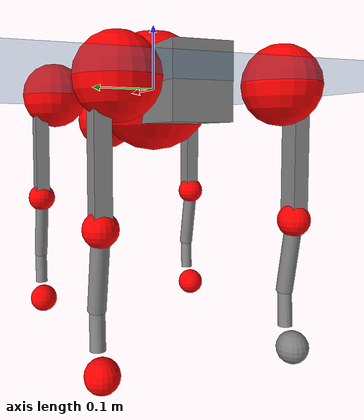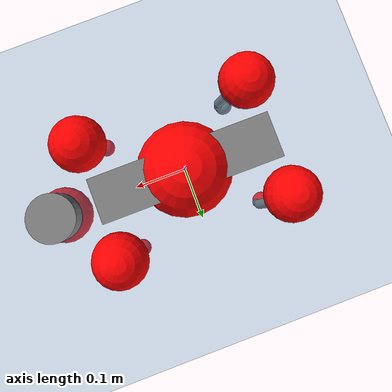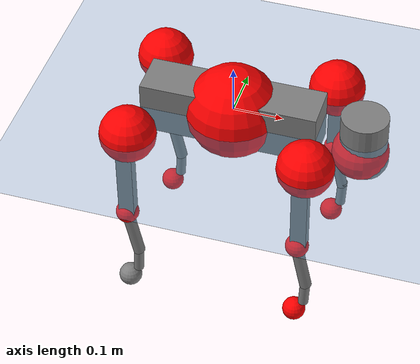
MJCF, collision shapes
<mujoco model="go2">
  <compiler angle="radian" assetdir="assets" balanceinertia="true" inertiafromgeom="false"/>

  <option timestep="0.005" density="1.2" viscosity="2e-05"/>

  <size nkey="1"/>

  <visual>
    <quality shadowsize="8192"/>
    <map shadowclip="0.5"/>
  </visual>

  <default>
    <default class="/">
      <geom contype="0" conaffinity="0" group="1" solref="-1000 -80"/>
      <site size="0.01 0.005 0.005" group="5"/>
      <general forcelimited="true" biastype="affine" gainprm="20" biasprm="0 -20 -0.5"/>
      <default class="go2">
        <joint armature="0.01" damping="0.01" frictionloss="0.2"/>
        <geom condim="1" margin="0.001"/>
        <default class="visual">
          <geom type="mesh" group="2"/>
        </default>
        <default class="collision">
          <geom group="3"/>
          <default class="foot">
            <geom size="0.022 0 0" condim="6" priority="1" friction="0.8 0.02 0.01" solimp="0.015 1 0.022"/>
          </default>
        </default>
        <default class="reward_collision_sphere">
          <geom group="5" rgba="1 0 0 1"/>
        </default>
      </default>
    </default>
  </default>

  <asset>
    <texture type="skybox" colorspace="auto" name="//unnamed_texture_0" builtin="gradient" rgb1="0.95 0.95 0.95" rgb2="0.95 0.95 0.95" width="100" height="600"/>
    <texture type="2d" colorspace="auto" name="texplane" builtin="checker" rgb1="0.345 0.575 0.748" rgb2="0.345 0.575 0.748" markrgb="1 1 1" width="512" height="512"/>
    <material name="MatPlane" class="/" texture="texplane" texuniform="true" texrepeat="2 2" specular="0.9"/>
    <material name="metal" class="/" rgba="0.9 0.95 0.95 1"/>
    <material name="black" class="/" rgba="0 0 0 1"/>
    <material name="white" class="/"/>
    <material name="gray" class="/" rgba="0.671705 0.692426 0.77427 1"/>
    <mesh name="base_0" class="/" file="base_0.obj"/>
    <mesh name="base_1" class="/" file="base_1.obj"/>
    <mesh name="base_2" class="/" file="base_2.obj"/>
    <mesh name="base_3" class="/" file="base_3.obj"/>
    <mesh name="base_4" class="/" file="base_4.obj"/>
    <mesh name="hip_0" class="/" file="hip_0.obj"/>
    <mesh name="hip_1" class="/" file="hip_1.obj"/>
    <mesh name="thigh_0" class="/" file="thigh_0.obj"/>
    <mesh name="thigh_1" class="/" file="thigh_1.obj"/>
    <mesh name="thigh_mirror_0" class="/" file="thigh_mirror_0.obj"/>
    <mesh name="thigh_mirror_1" class="/" file="thigh_mirror_1.obj"/>
    <mesh name="calf_0" class="/" file="calf_0.obj"/>
    <mesh name="calf_1" class="/" file="calf_1.obj"/>
    <mesh name="calf_mirror_0" class="/" file="calf_mirror_0.obj"/>
    <mesh name="calf_mirror_1" class="/" file="calf_mirror_1.obj"/>
    <mesh name="foot" class="/" file="foot.obj"/>
  </asset>

  <worldbody>
    <geom name="floor" class="/" size="100 100 0.125" type="plane" group="0" material="MatPlane"/>
    <light name="toplight_shadow" class="/" pos="0 0 5" dir="0.0990148 0.0990148 -0.990148" type="directional" ambient="0.04 0.04 0.04" diffuse="0.55 0.55 0.55" specular="0.12 0.12 0.12"/>
    <light name="toplight_fill" class="/" pos="0 0 5" dir="0.0990148 0.0990148 -0.990148" type="directional" castshadow="false" ambient="0.04 0.04 0.04" diffuse="0.3 0.3 0.3" specular="0.08 0.08 0.08"/>
    <body name="trunk" childclass="go2" pos="-0.000695933 -0.000209131 -0.00265202" quat="0.999999 -0.000558775 0.00107134 -0.000638672">
      <inertial pos="0.0183177 0.00259375 -0.00486685" quat="0.00191559 0.708373 -0.0131557 0.705714" mass="5.86186" diaginertia="0.075625 0.122484 0.0129707"/>
      <joint name="//unnamed_joint_0" type="free" armature="0" damping="0" frictionloss="0"/>
      <geom name="//unnamed_geom_1" class="visual" material="black" mesh="base_0"/>
      <geom name="//unnamed_geom_2" class="visual" material="black" mesh="base_1"/>
      <geom name="//unnamed_geom_3" class="visual" material="black" mesh="base_2"/>
      <geom name="//unnamed_geom_4" class="visual" material="white" mesh="base_3"/>
      <geom name="//unnamed_geom_5" class="visual" material="gray" mesh="base_4"/>
      <geom name="trunk_1" class="collision" size="0.177827 0.0441969 0.0538871" type="box"/>
      <geom name="trunk_2" class="collision" size="0.0472694 0.0425424" pos="0.263811 0 0.00874351" type="cylinder"/>
      <geom name="trunk_3" class="collision" size="0.0444332" pos="0.271216 0 -0.0524611"/>
      <geom name="//unnamed_geom_9" class="reward_collision_sphere" size="0.0945387"/>
      <geom name="//unnamed_geom_10" class="reward_collision_sphere" size="0.0567232" pos="0.259183 0 -0.0393458"/>
      <site name="imu" pos="-0.0290002 0.00722983 0.0246994" size="0.00945387"/>
      <camera name="track" pos="0 -2.07232 0" quat="0.707107 0.707107 0 0" mode="trackcom"/>
      <camera name="ego_camera" pos="0.288804 0 0.0393458" quat="-0.5 -0.5 0.5 0.5"/>
      <body name="FL_hip" pos="0.179536 0.0496444 0.00125345" quat="1 -1.36393e-05 -1.93882e-05 2.67723e-05">
        <inertial pos="-0.00763212 0.00268048 -0.0023456" quat="0.490672 0.510214 0.501069 0.497848" mass="0.561634" diaginertia="0.000607414 0.000706533 0.000241524"/>
        <joint name="FL_hip_joint" pos="0 0 0" axis="0.999974 0.0071052 0.000852208" range="-1.04458 1.07201" armature="0.00941062" damping="0" frictionloss="0.1993"/>
        <geom name="//unnamed_geom_11" class="visual" material="metal" mesh="hip_0"/>
        <geom name="//unnamed_geom_12" class="visual" material="gray" mesh="hip_1"/>
        <geom name="//unnamed_geom_13" class="collision" size="0.0434878 0.0189077" pos="0 0.0828926 0" quat="0.707107 0.707107 0 0" type="cylinder"/>
        <geom name="//unnamed_geom_14" class="reward_collision_sphere" size="0.0567232" pos="0 0.0725311 0"/>
        <body name="FL_thigh" pos="-0.00340489 0.0995984 0.00217568" quat="1 -4.66496e-05 2.93349e-05 -6.44299e-05">
          <inertial pos="-0.0031686 -0.0230188 -0.0291024" quat="0.829266 0.0820656 -0.0207433 0.552406" mass="0.928412" diaginertia="0.00385466 0.00673504 0.000420119"/>
          <joint name="FL_thigh_joint" pos="0 0 0" axis="0.00182004 0.999997 0.00184978" stiffness="0.00951633" range="-1.5931 3.48739" armature="0.00850208" damping="0.0168604" frictionloss="0.18963"/>
          <geom name="//unnamed_geom_15" class="visual" material="metal" mesh="thigh_0"/>
          <geom name="//unnamed_geom_16" class="visual" material="gray" mesh="thigh_1"/>
          <geom name="//unnamed_geom_17" class="collision" size="0.100684 0.011581 0.0160716" pos="0 0 -0.0931184" quat="0.707107 0 0.707107 0" type="box"/>
          <body name="FL_calf" pos="0.000391656 0.000144772 -0.18685" quat="1 2.83969e-05 -7.66543e-05 -1.26613e-06">
            <inertial pos="0.00342306 -0.00331236 -0.123819" quat="0.710962 -0.000144395 -0.0056856 0.703208" mass="0.202677" diaginertia="0.000971487 0.00172885 2.70263e-05"/>
            <joint name="FL_calf_joint" pos="0 0 0" axis="-0.00110655 0.999936 0.0112496" range="-2.7728 -0.805267" armature="0.00980323" damping="0.00302853" frictionloss="0.213701"/>
            <geom name="//unnamed_geom_18" class="visual" material="gray" mesh="calf_0"/>
            <geom name="//unnamed_geom_19" class="visual" material="black" mesh="calf_1"/>
            <geom name="FL_calf0" class="collision" size="0.0113446 0.0567232" pos="0.00740522 0 -0.0524611" quat="0.994493 0 -0.104807 0" type="cylinder"/>
            <geom name="//unnamed_geom_21" class="collision" size="0.0103993 0.0307251" pos="0.0185131 0 -0.129404" quat="0.999688 0 0.0249974 0" type="cylinder"/>
            <geom name="//unnamed_geom_22" class="visual" pos="0 0 -0.186237" quat="1 0 0 0" material="black" mesh="foot"/>
            <geom name="FL_foot" class="foot" size="0.0157535" pos="-0.00185131 0 -0.186237"/>
            <geom name="//unnamed_geom_24" class="reward_collision_sphere" size="0.0236347"/>
            <geom name="//unnamed_geom_25" class="reward_collision_sphere" size="0.0236347" pos="-0.00185131 0 -0.186237"/>
            <site name="FL_foot" class="foot" pos="-0.00185131 0 -0.186237" size="0.00945387"/>
          </body>
        </body>
      </body>
      <body name="FR_hip" pos="0.179216 -0.0475227 0.00157984" quat="0.999999 0.000638424 4.30103e-05 -0.00123534">
        <inertial pos="-0.00449897 -0.00165391 0.0005288" quat="0.509238 0.501381 0.497861 0.491354" mass="0.596308" diaginertia="0.000597673 0.000712887 0.000244646"/>
        <joint name="FR_hip_joint" pos="0 0 0" axis="0.999975 0.0035783 -0.00616181" range="-1.1043 1.02634" armature="0.00904762" damping="0.000270636" frictionloss="0.206567"/>
        <geom name="//unnamed_geom_26" class="visual" pos="0 1.40959e-09 6.04602e-08" quat="4.63268e-05 1 0 0" material="metal" mesh="hip_0"/>
        <geom name="//unnamed_geom_27" class="visual" pos="0 2.28511e-09 -1.49541e-07" quat="4.63268e-05 1 0 0" material="gray" mesh="hip_1"/>
        <geom name="//unnamed_geom_28" class="collision" size="0.0434878 0.0189077" pos="0 -0.0828926 0" quat="0.707107 0.707107 0 0" type="cylinder"/>
        <geom name="//unnamed_geom_29" class="reward_collision_sphere" size="0.0567232" pos="0 -0.0725311 0"/>
        <body name="FR_thigh" pos="-0.000238118 -0.100722 0.00111069" quat="1 0.00034671 0.00012631 -9.90491e-05">
          <inertial pos="-0.00324741 0.0239779 -0.0281903" quat="0.551133 -0.0218229 0.0811882 0.830171" mass="1.00068" diaginertia="0.00406091 0.00673991 0.000450287"/>
          <joint name="FR_thigh_joint" pos="0 0 0" axis="-0.00936055 -0.999948 -0.00397603" stiffness="0.01249" range="-3.48808 1.54088" armature="0.00925491" damping="0.00499518" frictionloss="0.165691"/>
          <geom name="//unnamed_geom_30" class="visual" material="metal" mesh="thigh_mirror_0"/>
          <geom name="//unnamed_geom_31" class="visual" material="gray" mesh="thigh_mirror_1"/>
          <geom name="//unnamed_geom_32" class="collision" size="0.100684 0.011581 0.0160716" pos="0 0 -0.0931184" quat="0.707107 0 0.707107 0" type="box"/>
          <body name="FR_calf" pos="-0.00336497 -0.00143287 -0.183772" quat="1 -0.000248024 0.000292159 0.000288293">
            <inertial pos="0.00699054 -0.00195971 -0.121382" quat="0.700092 -0.0140011 0.00848418 0.713865" mass="0.199321" diaginertia="0.000975425 0.00174529 2.56497e-05"/>
            <joint name="FR_calf_joint" pos="0 0 0" axis="-0.00159775 -0.999999 -0.000152651" stiffness="0.00370757" range="0.826468 2.72609" armature="0.00941096" damping="0" frictionloss="0.181591"/>
            <geom name="//unnamed_geom_33" class="visual" material="gray" mesh="calf_mirror_0"/>
            <geom name="//unnamed_geom_34" class="visual" material="black" mesh="calf_mirror_1"/>
            <geom name="FR_calf0" class="collision" size="0.01229 0.0567232" pos="0.00925653 0 -0.0524611" quat="0.995004 0 -0.0998334 0" type="cylinder"/>
            <geom name="//unnamed_geom_36" class="collision" size="0.0103993 0.0307251" pos="0.0185131 0 -0.129404" quat="0.999688 0 0.0249974 0" type="cylinder"/>
            <geom name="//unnamed_geom_37" class="visual" pos="0 0 -0.186237" quat="1 0 0 0" material="black" mesh="foot"/>
            <geom name="FR_foot" class="foot" size="0.0207891" pos="-0.00185131 0 -0.186237"/>
            <geom name="//unnamed_geom_39" class="reward_collision_sphere" size="0.0236347"/>
            <geom name="//unnamed_geom_40" class="reward_collision_sphere" size="0.0236347" pos="-0.00185131 0 -0.186237"/>
            <site name="FR_foot" class="foot" pos="-0.00185131 0 -0.186237" size="0.00945387"/>
          </body>
        </body>
      </body>
      <body name="RL_hip" pos="-0.178712 0.0464336 0.00116947" quat="1 -0.000245061 0.000293556 0.000182624">
        <inertial pos="0.00552516 -0.000310306 -0.00250988" quat="0.505504 0.498241 0.497002 0.499211" mass="0.566162" diaginertia="0.000584672 0.000699914 0.000233634"/>
        <joint name="RL_hip_joint" pos="0 0 0" axis="-0.999963 -0.00326774 -0.00798369" range="-1.10339 1.0994" armature="0.0106967" damping="0.0142848" frictionloss="0.191986"/>
        <geom name="//unnamed_geom_41" class="visual" pos="-4.46913e-10 0 -8.76053e-08" quat="4.63268e-05 0 1 0" material="metal" mesh="hip_0"/>
        <geom name="//unnamed_geom_42" class="visual" pos="-7.245e-10 0 -7.76934e-08" quat="4.63268e-05 0 1 0" material="gray" mesh="hip_1"/>
        <geom name="//unnamed_geom_43" class="collision" size="0.0434878 0.0189077" pos="0 0.0828926 0" quat="0.707107 0.707107 0 0" type="cylinder"/>
        <geom name="//unnamed_geom_44" class="reward_collision_sphere" size="0.0567232" pos="0 0.0725311 0"/>
        <body name="RL_thigh" pos="-0.000776669 0.0963673 0.000220759" quat="0.999999 3.37678e-05 -7.50677e-05 0.00114999">
          <inertial pos="-0.00090704 -0.0251241 -0.0312457" quat="0.829636 0.0843121 -0.020108 0.551535" mass="0.997729" diaginertia="0.00430753 0.00710996 0.000474523"/>
          <joint name="RL_thigh_joint" pos="0 0 0" axis="-0.0144167 0.99983 -0.0115128" stiffness="0.00935874" range="-0.55999 4.54501" armature="0.00983068" damping="0.00416799" frictionloss="0.194104"/>
          <geom name="//unnamed_geom_45" class="visual" material="metal" mesh="thigh_0"/>
          <geom name="//unnamed_geom_46" class="visual" material="gray" mesh="thigh_1"/>
          <geom name="//unnamed_geom_47" class="collision" size="0.100684 0.011581 0.0160716" pos="0 0 -0.0931184" quat="0.707107 0 0.707107 0" type="box"/>
          <body name="RL_calf" pos="-0.00151467 1.57215e-05 -0.189153" quat="0.999999 0.00075543 0.000373171 0.000779397">
            <inertial pos="0.00312064 0.00175008 -0.126025" quat="0.717742 -0.00560491 0.00129705 0.696286" mass="0.199322" diaginertia="0.000984401 0.00167987 2.65134e-05"/>
            <joint name="RL_calf_joint" pos="0 0 0" axis="0.00777609 0.999969 0.000995446" stiffness="0.00602096" range="-2.74016 -0.884908" armature="0.0107917" damping="0" frictionloss="0.191428"/>
            <geom name="//unnamed_geom_48" class="visual" material="gray" mesh="calf_0"/>
            <geom name="//unnamed_geom_49" class="visual" material="black" mesh="calf_1"/>
            <geom name="RL_calf0" class="collision" size="0.01229 0.0567232" pos="0.00925653 0 -0.0524611" quat="0.995004 0 -0.0998334 0" type="cylinder"/>
            <geom name="//unnamed_geom_51" class="collision" size="0.0103993 0.0307251" pos="0.0185131 0 -0.129404" quat="0.999688 0 0.0249974 0" type="cylinder"/>
            <geom name="//unnamed_geom_52" class="visual" pos="0 0 -0.186237" quat="1 0 0 0" material="black" mesh="foot"/>
            <geom name="RL_foot" class="foot" size="0.0195448" pos="-0.00185131 0 -0.186237"/>
            <geom name="//unnamed_geom_54" class="reward_collision_sphere" size="0.0236347"/>
            <geom name="//unnamed_geom_55" class="reward_collision_sphere" size="0.0236347" pos="-0.00185131 0 -0.186237"/>
            <site name="RL_foot" class="foot" pos="-0.00185131 0 -0.186237" size="0.00945387"/>
          </body>
        </body>
      </body>
      <body name="RR_hip" pos="-0.176254 -0.0489461 -0.00202077" quat="1 -0.000267959 3.38431e-05 0.000362401">
        <inertial pos="0.00237719 -0.00351337 -0.000772194" quat="0.495605 0.496401 0.491083 0.516525" mass="0.573989" diaginertia="0.000641777 0.000740218 0.000256842"/>
        <joint name="RR_hip_joint" pos="0 0 0" axis="-0.999916 0.0119036 0.00514997" stiffness="0.00192714" range="-1.05787 1.04712" armature="0.00944731" damping="0.00902893" frictionloss="0.212757"/>
        <geom name="//unnamed_geom_56" class="visual" pos="4.50739e-10 1.40959e-09 -1.48066e-07" quat="2.14617e-09 4.63268e-05 4.63268e-05 -1" material="metal" mesh="hip_0"/>
        <geom name="//unnamed_geom_57" class="visual" pos="7.15037e-10 2.28511e-09 7.18479e-08" quat="2.14617e-09 4.63268e-05 4.63268e-05 -1" material="gray" mesh="hip_1"/>
        <geom name="//unnamed_geom_58" class="collision" size="0.0434878 0.0189077" pos="0 -0.0828926 0" quat="0.707107 0.707107 0 0" type="cylinder"/>
        <geom name="//unnamed_geom_59" class="reward_collision_sphere" size="0.0567232" pos="0 -0.0725311 0"/>
        <body name="RR_thigh" pos="0.0016105 -0.0983453 -0.00215961" quat="1 3.70422e-05 0.000468972 -0.000458892">
          <inertial pos="-0.00143612 0.022735 -0.0302444" quat="0.546063 -0.0171882 0.0913617 0.83257" mass="0.949673" diaginertia="0.00421148 0.00701837 0.000446788"/>
          <joint name="RR_thigh_joint" pos="0 0 0" axis="0.00305345 -0.999931 0.0113693" range="-4.54395 0.475594" armature="0.00930433" damping="0.0061694" frictionloss="0.1976"/>
          <geom name="//unnamed_geom_60" class="visual" material="metal" mesh="thigh_mirror_0"/>
          <geom name="//unnamed_geom_61" class="visual" material="gray" mesh="thigh_mirror_1"/>
          <geom name="//unnamed_geom_62" class="collision" size="0.100684 0.011581 0.0160716" pos="0 0 -0.0931184" quat="0.707107 0 0.707107 0" type="box"/>
          <body name="RR_calf" pos="-0.00264125 0.00205256 -0.188587" quat="0.999999 3.89406e-05 0.000537145 -0.00107018">
            <inertial pos="0.0050432 0.00107778 -0.124217" quat="0.710886 0.00409926 -0.000547832 0.703295" mass="0.210776" diaginertia="0.00104543 0.00180657 2.67503e-05"/>
            <joint name="RR_calf_joint" pos="0 0 0" axis="0.0119227 -0.999886 0.00924902" range="0.889512 2.74709" armature="0.00943273" damping="0.00270735" frictionloss="0.196914"/>
            <geom name="//unnamed_geom_63" class="visual" material="gray" mesh="calf_mirror_0"/>
            <geom name="//unnamed_geom_64" class="visual" material="black" mesh="calf_mirror_1"/>
            <geom name="RR_calf0" class="collision" size="0.01229 0.0567232" pos="0.00925653 0 -0.0524611" quat="0.995004 0 -0.0998334 0" type="cylinder"/>
            <geom name="//unnamed_geom_66" class="collision" size="0.0103993 0.0307251" pos="0.0185131 0 -0.129404" quat="0.999688 0 0.0249974 0" type="cylinder"/>
            <geom name="//unnamed_geom_67" class="visual" pos="0 0 -0.186237" quat="1 0 0 0" material="black" mesh="foot"/>
            <geom name="RR_foot" class="foot" size="0.0236749" pos="-0.00185131 0 -0.186237"/>
            <geom name="//unnamed_geom_69" class="reward_collision_sphere" size="0.0236347"/>
            <geom name="//unnamed_geom_70" class="reward_collision_sphere" size="0.0236347" pos="-0.00185131 0 -0.186237"/>
            <site name="RR_foot" class="foot" pos="-0.00185131 0 -0.186237" size="0.00945387"/>
          </body>
        </body>
      </body>
    </body>
  </worldbody>

  <contact>
    <pair class="/" geom1="floor" geom2="FL_foot" name="//unnamed_contact_0"/>
    <pair class="/" geom1="floor" geom2="FR_foot" name="//unnamed_contact_1"/>
    <pair class="/" geom1="floor" geom2="RL_foot" name="//unnamed_contact_2"/>
    <pair class="/" geom1="floor" geom2="RR_foot" name="//unnamed_contact_3"/>
  </contact>

  <actuator>
    <general name="FL_hip" class="/" joint="FL_hip_joint" forcerange="-21.8948 21.8948" gainprm="18.4691" biasprm="0 -18.4691 -0.481998"/>
    <general name="FL_thigh" class="/" joint="FL_thigh_joint" forcerange="-21.7018 21.7018" gainprm="18.4691" biasprm="0 -18.4691 -0.481998"/>
    <general name="FL_calf" class="/" joint="FL_calf_joint" forcerange="-45.1042 45.1042" gainprm="18.4691" biasprm="0 -18.4691 -0.481998"/>
    <general name="FR_hip" class="/" joint="FR_hip_joint" forcerange="-23.2054 23.2054" gainprm="18.4691" biasprm="0 -18.4691 -0.481998"/>
    <general name="FR_thigh" class="/" joint="FR_thigh_joint" forcerange="-23.4117 23.4117" gainprm="18.4691" biasprm="0 -18.4691 -0.481998"/>
    <general name="FR_calf" class="/" joint="FR_calf_joint" forcerange="-42.5099 42.5099" gainprm="18.4691" biasprm="0 -18.4691 -0.481998"/>
    <general name="RL_hip" class="/" joint="RL_hip_joint" forcerange="-22.1511 22.1511" gainprm="18.4691" biasprm="0 -18.4691 -0.481998"/>
    <general name="RL_thigh" class="/" joint="RL_thigh_joint" forcerange="-20.1979 20.1979" gainprm="18.4691" biasprm="0 -18.4691 -0.481998"/>
    <general name="RL_calf" class="/" joint="RL_calf_joint" forcerange="-47.457 47.457" gainprm="18.4691" biasprm="0 -18.4691 -0.481998"/>
    <general name="RR_hip" class="/" joint="RR_hip_joint" forcerange="-22.4453 22.4453" gainprm="18.4691" biasprm="0 -18.4691 -0.481998"/>
    <general name="RR_thigh" class="/" joint="RR_thigh_joint" forcerange="-22.6252 22.6252" gainprm="18.4691" biasprm="0 -18.4691 -0.481998"/>
    <general name="RR_calf" class="/" joint="RR_calf_joint" forcerange="-45.7627 45.7627" gainprm="18.4691" biasprm="0 -18.4691 -0.481998"/>
  </actuator>

  <sensor>
    <gyro site="imu" name="imu_angular_velocity"/>
    <velocimeter site="imu" name="imu_linear_velocity"/>
    <framelinvel objtype="site" objname="FL_foot" name="FL_foot_global_linear_velocity"/>
    <framelinvel objtype="site" objname="FR_foot" name="FR_foot_global_linear_velocity"/>
    <framelinvel objtype="site" objname="RL_foot" name="RL_foot_global_linear_velocity"/>
    <framelinvel objtype="site" objname="RR_foot" name="RR_foot_global_linear_velocity"/>
  </sensor>

  <keyframe>
    <key name="home" qpos="0 0 0.325 1 0 0 0 0.1 0.8 -1.5 -0.1 -0.8 1.5 -0.1 0.8 -1.5 0.1 -0.8 1.5"/>
  </keyframe>
</mujoco>
